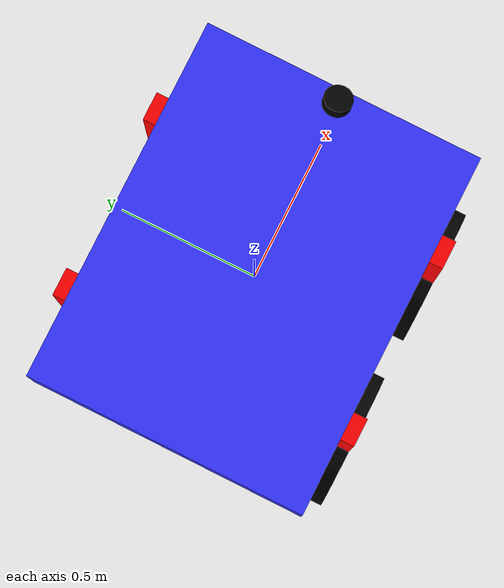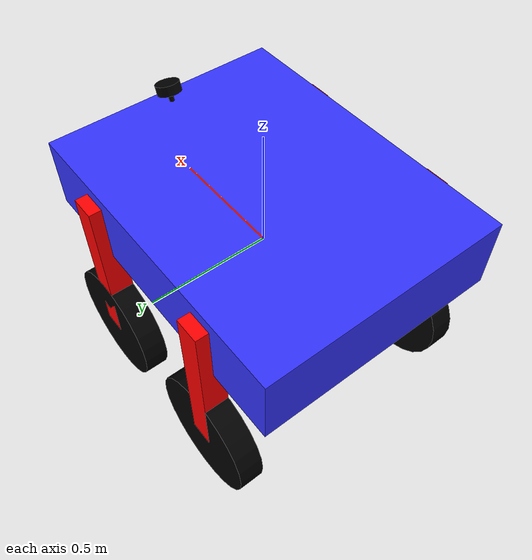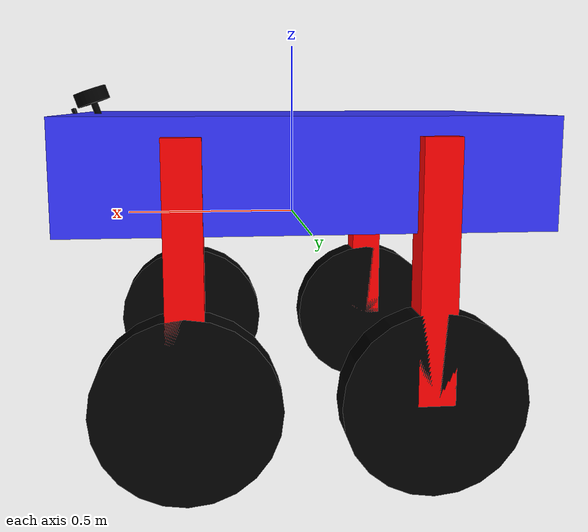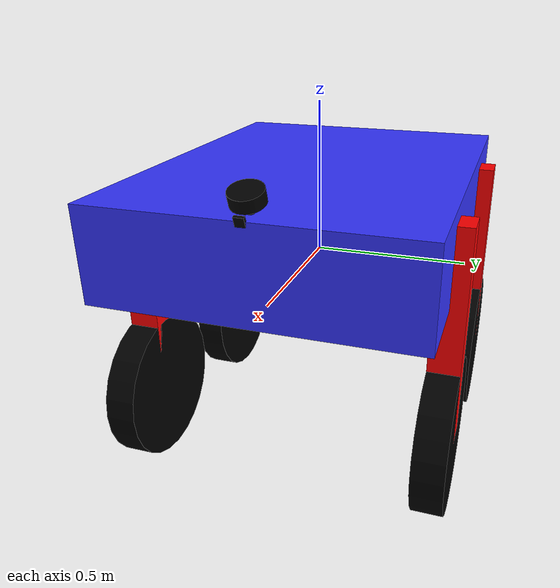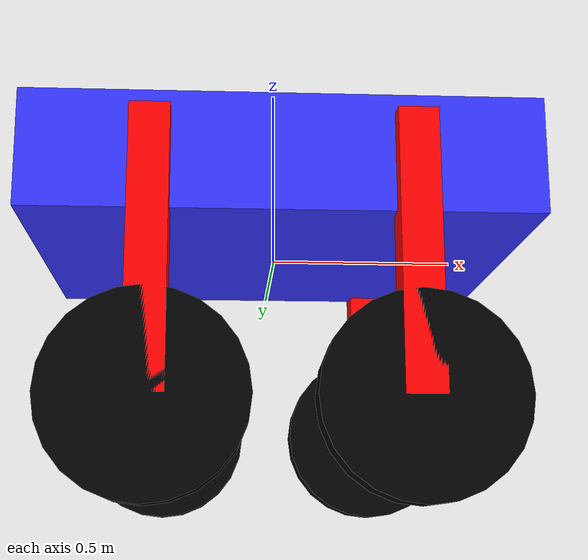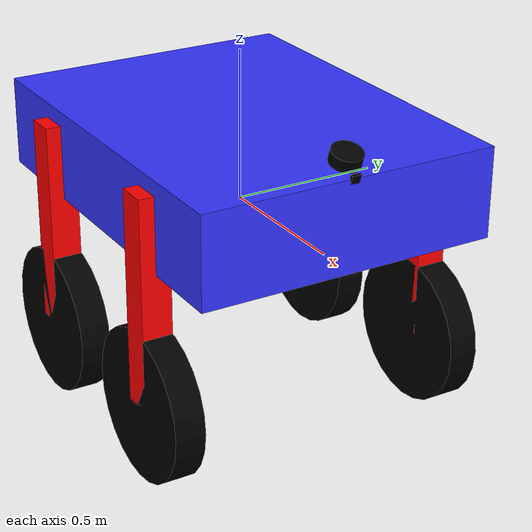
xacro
<?xml version="1.0"?>
<robot xmlns:xacro="http://www.ros.org/wiki/xacro"  name="robot">

    <xacro:arg name="use_ros2_control" default="true"/>

    <xacro:include filename="robot_core_control.xacro" />

    <xacro:include filename="lidar.xacro" />

    <xacro:include filename="camera.xacro" />
    <xacro:include filename="imu.xacro" />
    <xacro:include filename="gps.xacro" />
    <xacro:include filename="odom.xacro" />

    <xacro:if value="$(arg use_ros2_control)">
        <xacro:include filename="ros2_control.xacro" />
    </xacro:if>
    <xacro:unless value="$(arg use_ros2_control)">
        <xacro:include filename="gazebo_control.xacro" />
    </xacro:unless>

</robot>

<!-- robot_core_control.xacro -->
<robot xmlns:xacro="http://www.ros.org/wiki/xacro">

    <xacro:include filename="inertial_macros.xacro" />

    <xacro:property name="chassis_length" value="1.3"/>
    <xacro:property name="chassis_width" value="1.0"/>
    <xacro:property name="chassis_height" value="0.3"/>
    <xacro:property name="chassis_mass" value="2.0"/>

    <xacro:property name="leg_length" value="0.1"/>
    <xacro:property name="leg_width" value="0.1"/>
    <xacro:property name="leg_height" value="0.7"/>
    <xacro:property name="leg_mass" value="0.5"/>

    <xacro:property name="leg_offset_x" value="0.325"/>
    <xacro:property name="leg_offset_y" value="0.5"/>
    <xacro:property name="leg_offset_z" value="0.1"/>

    <xacro:property name="wheel_radius" value="0.25"/>
    <xacro:property name="wheel_thickness" value="0.1"/>
    <xacro:property name="wheel_mass" value="0.5"/>

    <xacro:property name="wheel_offset_x" value="0.325"/>
    <xacro:property name="wheel_offset_y" value="0.5"/>
    <xacro:property name="wheel_offset_z" value="0.01"/>

    <xacro:property name="caster_wheel_radius" value="0.12"/>
    <xacro:property name="caster_wheel_offset_x" value="-0.325"/>
    <xacro:property name="caster_wheel_offset_z" value="${wheel_offset_z - wheel_radius + caster_wheel_radius}"/>

    <material name="white">
        <color rgba="1 1 1 1" />
    </material>

    <material name="orange">
        <color rgba="1 0.3 0.1 1"/>
    </material>

    <material name="blue">
        <color rgba="0.2 0.2 1 1"/>
    </material>

    <material name="black">
        <color rgba="0 0 0 1"/>
    </material>

    <material name="red">
        <color rgba="1 0 0 1"/>
    </material>

    <!-- BASE_FOOTPRINT LINK -->

   <!-- BASE LINK -->

    <link name="base_link">
        <visual>
            <origin xyz="0 0 ${chassis_height/2}"/>
            <geometry>
                <box size="${chassis_length} ${chassis_width} ${chassis_height}"/>
            </geometry>
            <material name="blue"/>
        </visual>
        <collision>
            <origin xyz="0 0 ${chassis_height/2}"/>
            <geometry>
                <box size="${chassis_length} ${chassis_width} ${chassis_height}"/>
            </geometry>
        </collision>
        <xacro:inertial_box mass="0.5" x="${chassis_length}" y="${chassis_width}" z="${chassis_height}">
            <origin xyz="${chassis_length/2} 0 ${chassis_height/2}" rpy="0 0 0"/>
        </xacro:inertial_box>
    </link>

    <!-- LEFT WHEEL LINK -->

    <joint name="left_wheel_joint" type="continuous">
        <parent link="left_leg_link"/>
        <child link="left_wheel"/>
        <origin xyz="0 0 -0.35" rpy="-${pi/2} 0 0" />
        <axis xyz="0 0 1"/>
        <disable_collision>1</disable_collision>

    </joint>

    <joint name="left_wheel_leg_joint" type="revolute">  <!-- revolute to ros2 control and fixed to diffdrive -->
        <parent link="base_link"/>
        <child link="left_leg_link"/>
        <origin xyz="${leg_offset_x} ${leg_offset_y} ${-leg_offset_z}" rpy="0 0 0"/>
        <axis xyz="0 0 1"/>
        <limit lower="-0.7854" upper="0.7854" effort="10" velocity="0.5"/>

    </joint>

    <!-- Left leg link -->
    <link name="left_leg_link">
        <visual>
            <geometry>
                <box size="${leg_length} ${leg_width} ${leg_height}"/>
            </geometry>
            <material name="red"/>
        </visual>
        <collision>
            <geometry>
                <box size="${leg_length} ${leg_width} ${leg_height}"/>
            </geometry>
        </collision>
        <xacro:inertial_box mass="0.2" x="${leg_length}" y="${leg_width}" z="${leg_height}">
            <origin xyz="${leg_length/2} 0 ${leg_height/2}" rpy="0 0 0"/>
        </xacro:inertial_box>
    </link>

    <link name="left_wheel">
        <visual>
            <geometry>
                <cylinder radius="${wheel_radius}" length="${wheel_thickness}"/>
            </geometry>
            <material name="black"/>
        </visual>
        <collision>
            <geometry>
                <sphere radius="${wheel_radius}"/>
            </geometry>
        </collision>
        <xacro:inertial_cylinder mass="${wheel_mass}" length="${wheel_thickness}" radius="${wheel_radius}">
            <origin xyz="0 0 0" rpy="0 0 0"/>
        </xacro:inertial_cylinder>
    </link>

    <!-- RIGHT WHEEL LINK -->

    <joint name="right_wheel_joint" type="continuous">
        <parent link="right_leg_link"/>
        <child link="right_wheel"/>
        <origin xyz="0 0 -0.35" rpy="-${pi/2} 0 0" />
        <axis xyz="0 0 1"/>
        <disable_collision>0</disable_collision>
    </joint>

    <joint name="right_wheel_leg_joint" type="revolute">   <!-- revolute to ros2 control and fixed to diffdrive -->
        <parent link="base_link"/>
        <child link="right_leg_link"/>
        <origin xyz="${leg_offset_x} ${-leg_offset_y} ${-leg_offset_z}" rpy="0 0 0"/>
        <axis xyz="0 0 1"/>
        <limit lower="-0.7854" upper="0.7854" effort="10" velocity="0.5"/>

    </joint>

    <!-- Right leg link -->
    <link name="right_leg_link">
         <visual>
            <geometry>
                <box size="${leg_length} ${leg_width} ${leg_height}"/>
            </geometry>
            <material name="red"/>
        </visual>
        <collision>
            <geometry>
                <box size="${leg_length} ${leg_width} ${leg_height}"/>
            </geometry>
        </collision>
        <xacro:inertial_box mass="0.2" x="${leg_length}" y="${leg_width}" z="${leg_height}">
            <origin xyz="${leg_length/2} 0 ${leg_height/2}" rpy="0 0 0"/>
        </xacro:inertial_box>
    </link>

    <link name="right_wheel">
        <visual>
            <geometry>
                <cylinder radius="${wheel_radius}" length="${wheel_thickness}"/>
            </geometry>
            <material name="black"/>
        </visual>
        <collision>
            <geometry>
                <sphere radius="${wheel_radius}"/>
            </geometry>
        </collision>
        <xacro:inertial_cylinder mass="${wheel_mass}" length="${wheel_thickness}" radius="${wheel_radius}">
            <origin xyz="0 0 0" rpy="0 0 0"/>
        </xacro:inertial_cylinder>
    </link>

     <!-- wheel back right-->

<joint name="wheel_back_right_joint" type="continuous">

    <parent link="right_back_leg_link"/>
    <child link="wheel_back_right"/>
      <origin xyz="0 0 -0.35" rpy="-${pi/2} 0 0" />
    <axis xyz="0 0 1"/>
    <disable_collision>0</disable_collision>

</joint>

<joint name="right_wheel_back_leg_joint" type="revolute">  <!-- revolute to ros2 control and fixed to diffdrive  -->
        <parent link="base_link"/>
        <child link="right_back_leg_link"/>
        <origin xyz="${caster_wheel_offset_x} ${-wheel_offset_y} ${-leg_offset_z}" rpy="0.0 0.0 0.0"/>
        <axis xyz="0 0 1"/>
        <limit lower="-0.7854" upper="0.7854" effort="10" velocity="0.5"/>

</joint>

    <!-- Right back leg link -->
    <link name="right_back_leg_link">
         <visual>
            <geometry>
                <box size="${leg_length} ${leg_width} ${leg_height}"/>
            </geometry>
            <material name="red"/>
        </visual>
        <collision>
            <geometry>
                <box size="${leg_length} ${leg_width} ${leg_height}"/>
            </geometry>
        </collision>
        <xacro:inertial_box mass="0.2" x="${leg_length}" y="${leg_width}" z="${leg_height}">
            <origin xyz="${leg_length/2} 0 ${leg_height/2}" rpy="0 0 0"/>
        </xacro:inertial_box>
    </link>

<link name="wheel_back_right">
    <visual>
            <geometry>
                <cylinder radius="${wheel_radius}" length="${wheel_thickness}"/>
            </geometry>
            <material name="black"/>
        </visual>
        <collision>
            <geometry>
                <sphere radius="${wheel_radius}"/>
            </geometry>
        </collision>
        <xacro:inertial_cylinder mass="${wheel_mass}" length="${wheel_thickness}" radius="${wheel_radius}">
            <origin xyz="0 0 0" rpy="0 0 0"/>
        </xacro:inertial_cylinder>
</link>

<!-- wheel back left-->
<joint name="wheel_back_left_joint" type="continuous">

    <parent link="left_back_leg_link"/>
    <child link="wheel_back_left"/>
      <origin xyz="0 0 -0.35" rpy="-${pi/2} 0 0" />
    <axis xyz="0 0 1"/>
    <disable_collision>0</disable_collision>

</joint>

<joint name="left_wheel_back_leg_joint" type="revolute"> <!-- revolute to ros2 control and fixed to diffdrive -->
        <parent link="base_link"/>
        <child link="left_back_leg_link"/>
        <origin xyz="${caster_wheel_offset_x} ${wheel_offset_y} ${-leg_offset_z}" rpy="0.0 0.0 0.0"/>
        <axis xyz="0 0 1"/>
        <limit lower="-0.7854" upper="0.7854" effort="10" velocity="0.5"/>

</joint>

    <!-- left back leg link -->
    <link name="left_back_leg_link">
         <visual>
            <geometry>
                <box size="${leg_length} ${leg_width} ${leg_height}"/>
            </geometry>
            <material name="red"/>
        </visual>
        <collision>
            <geometry>
                <box size="${leg_length} ${leg_width} ${leg_height}"/>
            </geometry>
        </collision>
        <xacro:inertial_box mass="0.2" x="${leg_length}" y="${leg_width}" z="${leg_height}">
            <origin xyz="${leg_length/2} 0 ${leg_height/2}" rpy="0 0 0"/>
        </xacro:inertial_box>
    </link>

<link name="wheel_back_left">
    <visual>
            <geometry>
                <cylinder radius="${wheel_radius}" length="${wheel_thickness}"/>
            </geometry>
            <material name="black"/>
        </visual>
        <collision>
            <geometry>
                <sphere radius="${wheel_radius}"/>
            </geometry>
        </collision>
        <xacro:inertial_cylinder mass="${wheel_mass}" length="${wheel_thickness}" radius="${wheel_radius}">
            <origin xyz="0 0 0" rpy="0 0 0"/>
        </xacro:inertial_cylinder>
</link>

</robot>

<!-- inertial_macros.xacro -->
<robot xmlns:xacro="http://www.ros.org/wiki/xacro" >

    <!-- Specify some standard inertial calculations https://en.wikipedia.org/wiki/List_of_moments_of_inertia -->
    <!-- These make use of xacro's mathematical functionality -->

    <xacro:macro name="inertial_sphere" params="mass radius *origin">
        <inertial>
            <xacro:insert_block name="origin"/>
            <mass value="${mass}" />
            <inertia ixx="${(2/5) * mass * (radius*radius)}" ixy="0.0" ixz="0.0"
                    iyy="${(2/5) * mass * (radius*radius)}" iyz="0.0"
                    izz="${(2/5) * mass * (radius*radius)}" />
        </inertial>
    </xacro:macro>

    <xacro:macro name="inertial_box" params="mass x y z *origin">
        <inertial>
            <xacro:insert_block name="origin"/>
            <mass value="${mass}" />
            <inertia ixx="${(1/12) * mass * (y*y+z*z)}" ixy="0.0" ixz="0.0"
                    iyy="${(1/12) * mass * (x*x+z*z)}" iyz="0.0"
                    izz="${(1/12) * mass * (x*x+y*y)}" />
        </inertial>
    </xacro:macro>

    <xacro:macro name="inertial_cylinder" params="mass length radius *origin">
        <inertial>
            <xacro:insert_block name="origin"/>
            <mass value="${mass}" />
            <inertia ixx="${(1/12) * mass * (3*radius*radius + length*length)}" ixy="0.0" ixz="0.0"
                    iyy="${(1/12) * mass * (3*radius*radius + length*length)}" iyz="0.0"
                    izz="${(1/2) * mass * (radius*radius)}" />
        </inertial>
    </xacro:macro>

</robot>

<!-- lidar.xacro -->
<robot xmlns:xacro="http://www.ros.org/wiki/xacro" >

    <joint name="laser_joint" type="fixed">
        <parent link="base_link"/>
        <child link="laser_frame"/>
        <origin xyz="0.60 0 0.35" rpy="0 0.33 0"/>
    </joint>

    <link name="laser_frame">
        <visual>
            <geometry>
                <cylinder radius="0.05" length="0.04"/>
            </geometry>
            <material name="black"/>
        </visual>
        <visual>
            <origin xyz="0 0 -0.05"/>
            <geometry>
                <cylinder radius="0.01" length="0.1"/>
            </geometry>
            <material name="black"/>
        </visual>
        <collision>
            <geometry>
                <cylinder radius="0.05" length="0.04"/>
            </geometry>
        </collision>
        <xacro:inertial_cylinder mass="0.1" length="0.04" radius="0.05">
            <origin xyz="0 0 0" rpy="0 0 0"/>
        </xacro:inertial_cylinder>
    </link>

    <gazebo reference="laser_frame">
        <material>Gazebo/Black</material>

        <sensor name='laser' type='gpu_lidar'>
            <pose>0 0 0 0 0 0</pose>
            <topic>scan</topic>
            <gz_frame_id>laser_frame</gz_frame_id>
            <update_rate>10</update_rate>
            <lidar>
              <scan>
                <horizontal>
                  <samples>1024</samples>
                  <resolution>1</resolution>
                  <min_angle>-1.396263</min_angle>
                  <max_angle>1.396263</max_angle>
                </horizontal>
                <vertical>
                  <samples>16</samples>
                  <resolution>1</resolution>
                  <min_angle>-0.261799</min_angle>
                  <max_angle>0.261799</max_angle>
                </vertical>
              </scan>
              <range>
                <min>0.08</min>
                <max>10.0</max>
                <resolution>0.01</resolution>
              </range>
            </lidar>
            <visualize>true</visualize>
          </sensor>
    </gazebo>

</robot>

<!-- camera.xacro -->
<robot xmlns:xacro="http://www.ros.org/wiki/xacro" >

    <joint name="camera_joint" type="fixed">
        <parent link="base_link"/>
        <child link="camera_link"/>
        <origin xyz="0.65 0.0 0.3" rpy="0.0 0.33 0"/>
    </joint>

    <link name="camera_link">
        <visual>
            <geometry>
                <box size="0.010 0.03 0.03"/>
            </geometry>
            <material name="black"/>
        </visual>
        <visual>
            <origin xyz="0 0 -0.05"/>
            <geometry>
                <cylinder radius="0.002" length="0.1"/>
            </geometry>
            <material name="black"/>
        </visual>
    </link>

    <joint name="camera_optical_joint" type="fixed">
        <parent link="camera_link"/>
        <child link="camera_link_optical"/>
        <origin xyz="0 0 0" rpy="${-pi/2} 0 ${-pi/2}"/>
    </joint>

    <link name="camera_link_optical"></link>

    <gazebo reference="camera_link">
        <material>Gazebo/Black</material>

        <sensor name="rgbd_camera" type="rgbd_camera">
          <pose>0 0 0 0 0 0</pose>
          <visualize>true</visualize>
          <update_rate>10</update_rate>

          <camera>
            <horizontal_fov>1.089</horizontal_fov>
            <image>
              <format>R8G8B8</format>
              <width>640</width>
              <height>480</height>
            </image>
            <clip>
              <near>0.05</near>
              <far>8.0</far>
            </clip>
            <!-- Active le nuage de points dense -->
            <depth_far_clip>8.0</depth_far_clip>
            <depth_near_clip>0.05</depth_near_clip>
          </camera>

          <!-- Topics publiés -->
          <topic>camera</topic>
          <gz_frame_id>camera_link_optical</gz_frame_id>

        </sensor>
      </gazebo>

</robot>

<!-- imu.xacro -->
<robot xmlns:xacro="http://www.ros.org/wiki/xacro" >

<joint name="imu_joint" type="fixed">
    <parent link="base_link"/>
    <child link="imu_link"/>
    <origin xyz="0.0 0 0.112" rpy="-0.01 -0.03 -1.52"/>
  </joint>

 <link name="imu_link">
  <visual>
    <geometry>
      <box size="0.05 0.05 0.05"/>
    </geometry>
  </visual>

  <collision>
    <geometry>
      <box size="0.05 0.05 0.05"/>
    </geometry>
  </collision>

  <inertial>
            <mass value="0.1" />
            <inertia ixx="0.01" ixy="0.0" ixz="0"
            iyy="0.01" iyz="0" izz="0.01" />
  </inertial>

</link>

<gazebo reference="imu_link">

  <material>Gazebo/Black</material>

  <sensor name="imu_sensor" type="imu">

    <always_on>true</always_on>
    <update_rate>200</update_rate>
    <gz_frame_id>imu_link</gz_frame_id>

    <topic>imu</topic>

    <imu>

      <orientation_reference_frame parent_frame="imu_link" custom_rpy="0 0 0"/>

      <angular_velocity>
        <x>
          <noise type="gaussian">
            <mean>0.0</mean>
            <stddev>2e-4</stddev>
          </noise>
        </x>
        <y>
          <noise type="gaussian">
            <mean>0.0</mean>
            <stddev>2e-4</stddev>
          </noise>
        </y>
        <z>
          <noise type="gaussian">
            <mean>0.0</mean>
            <stddev>2e-4</stddev>
          </noise>
        </z>
      </angular_velocity>

      <linear_acceleration>
        <x>
          <noise type="gaussian">
            <mean>0.0</mean>
            <stddev>1.7e-2</stddev>
          </noise>
        </x>
        <y>
          <noise type="gaussian">
            <mean>0.0</mean>
            <stddev>1.7e-2</stddev>
          </noise>
        </y>
        <z>
          <noise type="gaussian">
            <mean>0.0</mean>
            <stddev>1.7e-2</stddev>
          </noise>
        </z>
      </linear_acceleration>

        <orientation_enabled>true</orientation_enabled>
      </imu>

    </sensor>
  </gazebo>

</robot>

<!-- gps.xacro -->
<robot xmlns:xacro="http://www.ros.org/wiki/xacro">

  <!-- Joint fixe entre le châssis et le GNSS -->
  <joint name="gnss_joint" type="fixed">
    <parent link="base_link"/>
    <child link="gnss_frame"/>

    <origin xyz="0.0 0 0.35" rpy="0 0 0"/>
  </joint>

  <link name="gnss_frame">

  </link>

  <!-- Définition du capteur GNSS pour Gazebo Sim -->
  <gazebo reference="gnss_frame">
    <material>Gazebo/Black</material>

    <!-- Capteur GNSS -->
    <sensor name="gnss" type="navsat">
      <pose>0 0 0 0 0 0</pose>

      <topic>/gnss/fix</topic>

      <gz_frame_id>gnss_frame</gz_frame_id>
      <update_rate>1</update_rate>

      <navsat>

        <position_sensing>
          <horizontal>
            <noise type="gaussian">
              <mean>0.0</mean>
              <stddev>0.0</stddev>
            </noise>
          </horizontal>
          <vertical>
            <noise type="gaussian">
              <mean>0.0</mean>
              <stddev>0.0</stddev>
            </noise>
          </vertical>
        </position_sensing>
        <velocity_sensing>
          <noise type="gaussian">
            <mean>0.0</mean>
            <stddev>0.0</stddev>
          </noise>
        </velocity_sensing>
      </navsat>

      <visualize>true</visualize>
    </sensor>
  </gazebo>

</robot>
